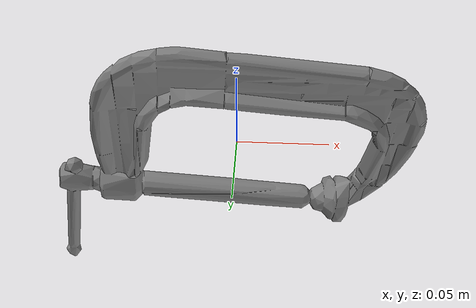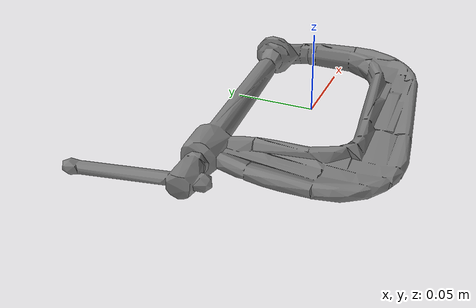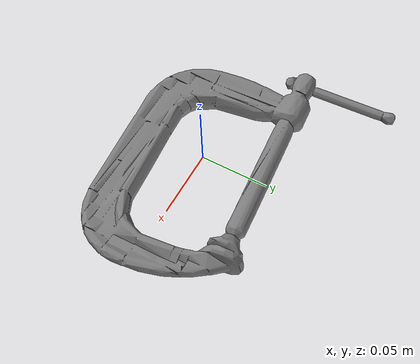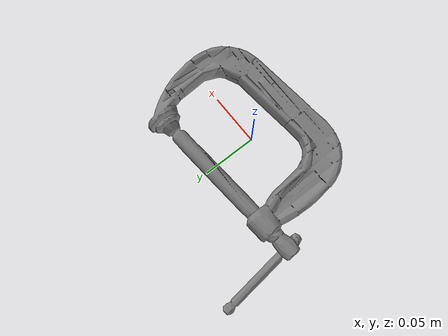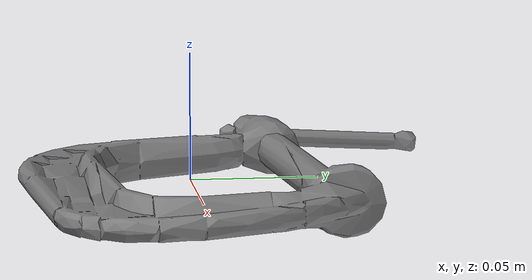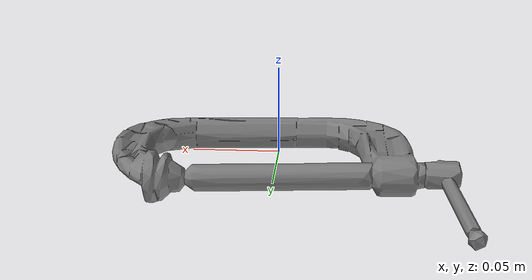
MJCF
<mujoco model="clamp_Pony_C_Clamp_1440_M">
  <default>
    <default class="visual">
      <geom group="2" type="mesh" contype="0" conaffinity="0" />
    </default>
    <default class="collision">
      <geom group="3" type="mesh" />
    </default>
  </default>
  <asset>
    <mesh file="clamp_Pony_C_Clamp_1440_M.stl" />
    <mesh file="clamp_Pony_C_Clamp_1440_M_collision_0.stl" />
    <mesh file="clamp_Pony_C_Clamp_1440_M_collision_1.stl" />
    <mesh file="clamp_Pony_C_Clamp_1440_M_collision_2.stl" />
    <mesh file="clamp_Pony_C_Clamp_1440_M_collision_3.stl" />
    <mesh file="clamp_Pony_C_Clamp_1440_M_collision_4.stl" />
    <mesh file="clamp_Pony_C_Clamp_1440_M_collision_5.stl" />
    <mesh file="clamp_Pony_C_Clamp_1440_M_collision_6.stl" />
    <mesh file="clamp_Pony_C_Clamp_1440_M_collision_7.stl" />
    <mesh file="clamp_Pony_C_Clamp_1440_M_collision_8.stl" />
    <mesh file="clamp_Pony_C_Clamp_1440_M_collision_9.stl" />
    <mesh file="clamp_Pony_C_Clamp_1440_M_collision_10.stl" />
    <mesh file="clamp_Pony_C_Clamp_1440_M_collision_11.stl" />
    <mesh file="clamp_Pony_C_Clamp_1440_M_collision_12.stl" />
    <mesh file="clamp_Pony_C_Clamp_1440_M_collision_13.stl" />
    <mesh file="clamp_Pony_C_Clamp_1440_M_collision_14.stl" />
    <mesh file="clamp_Pony_C_Clamp_1440_M_collision_15.stl" />
  </asset>
  <worldbody>
    <body name="clamp_Pony_C_Clamp_1440_M">
      <geom mesh="clamp_Pony_C_Clamp_1440_M" class="visual" />
      <geom mesh="clamp_Pony_C_Clamp_1440_M_collision_0" class="collision" />
      <geom mesh="clamp_Pony_C_Clamp_1440_M_collision_1" class="collision" />
      <geom mesh="clamp_Pony_C_Clamp_1440_M_collision_2" class="collision" />
      <geom mesh="clamp_Pony_C_Clamp_1440_M_collision_3" class="collision" />
      <geom mesh="clamp_Pony_C_Clamp_1440_M_collision_4" class="collision" />
      <geom mesh="clamp_Pony_C_Clamp_1440_M_collision_5" class="collision" />
      <geom mesh="clamp_Pony_C_Clamp_1440_M_collision_6" class="collision" />
      <geom mesh="clamp_Pony_C_Clamp_1440_M_collision_7" class="collision" />
      <geom mesh="clamp_Pony_C_Clamp_1440_M_collision_8" class="collision" />
      <geom mesh="clamp_Pony_C_Clamp_1440_M_collision_9" class="collision" />
      <geom mesh="clamp_Pony_C_Clamp_1440_M_collision_10" class="collision" />
      <geom mesh="clamp_Pony_C_Clamp_1440_M_collision_11" class="collision" />
      <geom mesh="clamp_Pony_C_Clamp_1440_M_collision_12" class="collision" />
      <geom mesh="clamp_Pony_C_Clamp_1440_M_collision_13" class="collision" />
      <geom mesh="clamp_Pony_C_Clamp_1440_M_collision_14" class="collision" />
      <geom mesh="clamp_Pony_C_Clamp_1440_M_collision_15" class="collision" />
    </body>
  </worldbody>
</mujoco>
